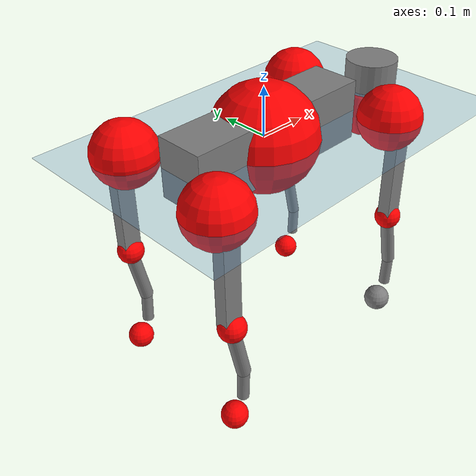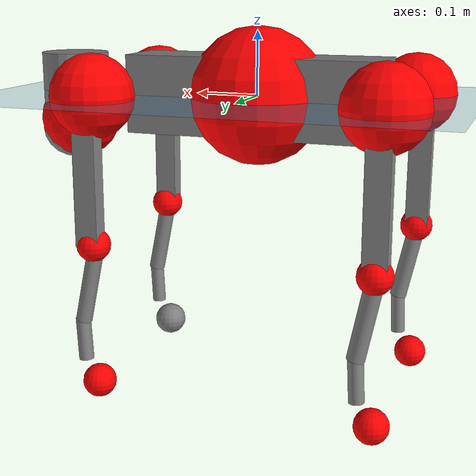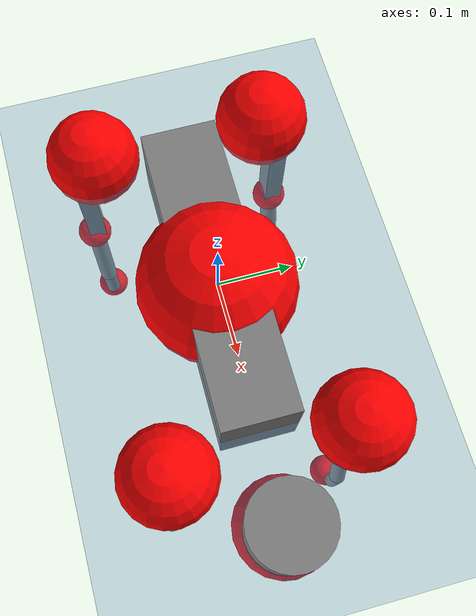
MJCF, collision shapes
<mujoco model="go2">
  <compiler angle="radian" assetdir="assets" balanceinertia="true" inertiafromgeom="false"/>

  <option timestep="0.005" density="1.2" viscosity="2e-05"/>

  <size nkey="1"/>

  <visual>
    <quality shadowsize="8192"/>
    <map shadowclip="0.5"/>
  </visual>

  <default>
    <default class="/">
      <geom contype="0" conaffinity="0" group="1" solref="-1000 -80"/>
      <site size="0.01 0.005 0.005" group="5"/>
      <general forcelimited="true" biastype="affine" gainprm="20" biasprm="0 -20 -0.5"/>
      <default class="go2">
        <joint armature="0.01" damping="0.01" frictionloss="0.2"/>
        <geom condim="1" margin="0.001"/>
        <default class="visual">
          <geom type="mesh" group="2"/>
        </default>
        <default class="collision">
          <geom group="3"/>
          <default class="foot">
            <geom size="0.022 0 0" condim="6" priority="1" friction="0.8 0.02 0.01" solimp="0.015 1 0.022"/>
          </default>
        </default>
        <default class="reward_collision_sphere">
          <geom group="5" rgba="1 0 0 1"/>
        </default>
      </default>
    </default>
  </default>

  <asset>
    <texture type="skybox" colorspace="auto" name="//unnamed_texture_0" builtin="gradient" rgb1="0.95 0.95 0.95" rgb2="0.95 0.95 0.95" width="100" height="600"/>
    <texture type="2d" colorspace="auto" name="texplane" builtin="checker" rgb1="0.345 0.575 0.748" rgb2="0.345 0.575 0.748" markrgb="1 1 1" width="512" height="512"/>
    <material name="MatPlane" class="/" texture="texplane" texuniform="true" texrepeat="2 2" specular="0.9"/>
    <material name="metal" class="/" rgba="0.9 0.95 0.95 1"/>
    <material name="black" class="/" rgba="0 0 0 1"/>
    <material name="white" class="/"/>
    <material name="gray" class="/" rgba="0.671705 0.692426 0.77427 1"/>
    <mesh name="base_0" class="/" file="base_0.obj"/>
    <mesh name="base_1" class="/" file="base_1.obj"/>
    <mesh name="base_2" class="/" file="base_2.obj"/>
    <mesh name="base_3" class="/" file="base_3.obj"/>
    <mesh name="base_4" class="/" file="base_4.obj"/>
    <mesh name="hip_0" class="/" file="hip_0.obj"/>
    <mesh name="hip_1" class="/" file="hip_1.obj"/>
    <mesh name="thigh_0" class="/" file="thigh_0.obj"/>
    <mesh name="thigh_1" class="/" file="thigh_1.obj"/>
    <mesh name="thigh_mirror_0" class="/" file="thigh_mirror_0.obj"/>
    <mesh name="thigh_mirror_1" class="/" file="thigh_mirror_1.obj"/>
    <mesh name="calf_0" class="/" file="calf_0.obj"/>
    <mesh name="calf_1" class="/" file="calf_1.obj"/>
    <mesh name="calf_mirror_0" class="/" file="calf_mirror_0.obj"/>
    <mesh name="calf_mirror_1" class="/" file="calf_mirror_1.obj"/>
    <mesh name="foot" class="/" file="foot.obj"/>
  </asset>

  <worldbody>
    <geom name="floor" class="/" size="100 100 0.125" type="plane" group="0" material="MatPlane"/>
    <light name="toplight_shadow" class="/" pos="0 0 5" dir="0.0990148 0.0990148 -0.990148" type="directional" ambient="0.04 0.04 0.04" diffuse="0.55 0.55 0.55" specular="0.12 0.12 0.12"/>
    <light name="toplight_fill" class="/" pos="0 0 5" dir="0.0990148 0.0990148 -0.990148" type="directional" castshadow="false" ambient="0.04 0.04 0.04" diffuse="0.3 0.3 0.3" specular="0.08 0.08 0.08"/>
    <body name="trunk" childclass="go2" pos="-0.00119052 -0.000567122 0.000251659" quat="1 0.000279844 -6.24742e-05 -0.000269993">
      <inertial pos="0.032621 0.00579244 -0.00528584" quat="-0.00314395 0.718313 2.50952e-06 0.695713" mass="8.11036" diaginertia="0.198954 0.118238 0.0373722"/>
      <joint name="//unnamed_joint_0" type="free" armature="0" damping="0" frictionloss="0"/>
      <geom name="//unnamed_geom_1" class="visual" material="black" mesh="base_0"/>
      <geom name="//unnamed_geom_2" class="visual" material="black" mesh="base_1"/>
      <geom name="//unnamed_geom_3" class="visual" material="black" mesh="base_2"/>
      <geom name="//unnamed_geom_4" class="visual" material="white" mesh="base_3"/>
      <geom name="//unnamed_geom_5" class="visual" material="gray" mesh="base_4"/>
      <geom name="trunk_1" class="collision" size="0.203254 0.0505164 0.0615922" type="box"/>
      <geom name="trunk_2" class="collision" size="0.0540283 0.0486254" pos="0.32131 0 0.0107856" type="cylinder"/>
      <geom name="trunk_3" class="collision" size="0.0507866" pos="0.330329 0 -0.0647135"/>
      <geom name="//unnamed_geom_9" class="reward_collision_sphere" size="0.108057"/>
      <geom name="//unnamed_geom_10" class="reward_collision_sphere" size="0.0648339" pos="0.315673 0 -0.0485351"/>
      <site name="imu" pos="-0.0635619 0.000293481 0.0801078" size="0.0108057"/>
      <camera name="track" pos="0 -2.07147 0" quat="0.707107 0.707107 0 0" mode="trackcom"/>
      <camera name="ego_camera" pos="0.35175 0 0.0485351" quat="-0.5 -0.5 0.5 0.5"/>
      <body name="FL_hip" pos="0.222504 0.0532005 0.00486055" quat="0.999999 -0.000330487 -0.00109979 -0.000121348">
        <inertial pos="-0.00638199 0.00627346 -0.0021387" quat="0.498522 0.499365 0.506484 0.495564" mass="0.932282" diaginertia="0.00180572 0.000837885 0.000771366"/>
        <joint name="FL_hip_joint" pos="0 0 0" axis="0.999964 -0.0047129 0.00708601" stiffness="0.0156855" range="-1.04801 1.03788" armature="0.0116693" damping="0" frictionloss="0.250396"/>
        <geom name="//unnamed_geom_11" class="visual" material="metal" mesh="hip_0"/>
        <geom name="//unnamed_geom_12" class="visual" material="gray" mesh="hip_1"/>
        <geom name="//unnamed_geom_13" class="collision" size="0.049706 0.0216113" pos="0 0.0828587 0" quat="0.707107 0.707107 0 0" type="cylinder"/>
        <geom name="//unnamed_geom_14" class="reward_collision_sphere" size="0.0648339" pos="0 0.0725014 0"/>
        <body name="FL_thigh" pos="0.00208352 0.0912377 -0.00189139" quat="0.999995 0.00158894 -0.00265709 0.000796842">
          <inertial pos="-0.00236762 -0.023048 -0.0370983" quat="0.818238 0.0930025 -0.0115664 0.56719" mass="1.47793" diaginertia="0.0106339 0.00747009 0.00126002"/>
          <joint name="FL_thigh_joint" pos="0 0 0" axis="0.00552036 0.999985 -0.000433457" range="-1.69001 3.42938" armature="0.0102284" damping="0" frictionloss="0.238289"/>
          <geom name="//unnamed_geom_15" class="visual" material="metal" mesh="thigh_0"/>
          <geom name="//unnamed_geom_16" class="visual" material="gray" mesh="thigh_1"/>
          <geom name="//unnamed_geom_17" class="collision" size="0.11508 0.0132369 0.0183696" pos="0 0 -0.114866" quat="0.707107 0 0.707107 0" type="box"/>
          <body name="FL_calf" pos="-0.00232959 -0.00625635 -0.229244" quat="1 0.00044601 0.000459732 0.000199861">
            <inertial pos="0.00663104 0.00111455 -0.151217" quat="0.707743 0.00228793 -0.00736847 0.706428" mass="0.297671" diaginertia="0.00282424 0.00174889 7.72807e-05"/>
            <joint name="FL_calf_joint" pos="0 0 0" axis="0.00344993 0.999981 0.00506302" stiffness="0.0281073" range="-2.78261 -0.82138" armature="0.0110085" damping="0.0142597" frictionloss="0.224892"/>
            <geom name="//unnamed_geom_18" class="visual" material="gray" mesh="calf_0"/>
            <geom name="//unnamed_geom_19" class="visual" material="black" mesh="calf_1"/>
            <geom name="FL_calf0" class="collision" size="0.0129668 0.0648339" pos="0.00901923 0 -0.0647135" quat="0.994493 0 -0.104807 0" type="cylinder"/>
            <geom name="//unnamed_geom_21" class="collision" size="0.0118862 0.0351184" pos="0.0225481 0 -0.159627" quat="0.999688 0 0.0249974 0" type="cylinder"/>
            <geom name="//unnamed_geom_22" class="visual" pos="0 0 -0.229733" quat="1 0 0 0" material="black" mesh="foot"/>
            <geom name="FL_foot" class="foot" size="0.0241723" pos="-0.00225481 0 -0.229733"/>
            <geom name="//unnamed_geom_24" class="reward_collision_sphere" size="0.0270141"/>
            <geom name="//unnamed_geom_25" class="reward_collision_sphere" size="0.0270141" pos="-0.00225481 0 -0.229733"/>
            <site name="FL_foot" class="foot" pos="-0.00225481 0 -0.229733" size="0.0108057"/>
          </body>
        </body>
      </body>
      <body name="FR_hip" pos="0.225264 -0.0498793 -0.000819211" quat="1 0.000221152 -0.000273259 0.000299007">
        <inertial pos="-0.00335748 0.00711968 0.00287473" quat="0.468553 0.497862 0.521761 0.510252" mass="0.853595" diaginertia="0.00174754 0.000665994 0.000755354"/>
        <joint name="FR_hip_joint" pos="0 0 0" axis="0.999682 -0.00840821 0.0237639" stiffness="0.00337397" range="-1.00704 1.05082" armature="0.010467" damping="0.0290458" frictionloss="0.216466"/>
        <geom name="//unnamed_geom_26" class="visual" pos="0 -3.73069e-10 -1.60017e-08" quat="4.63268e-05 1 0 0" material="metal" mesh="hip_0"/>
        <geom name="//unnamed_geom_27" class="visual" pos="0 -6.04789e-10 3.95783e-08" quat="4.63268e-05 1 0 0" material="gray" mesh="hip_1"/>
        <geom name="//unnamed_geom_28" class="collision" size="0.049706 0.0216113" pos="0 -0.0828587 0" quat="0.707107 0.707107 0 0" type="cylinder"/>
        <geom name="//unnamed_geom_29" class="reward_collision_sphere" size="0.0648339" pos="0 -0.0725014 0"/>
        <body name="FR_thigh" pos="-0.00187085 -0.0968082 0.00583929" quat="0.999996 0.00235844 -0.00124956 -0.000544725">
          <inertial pos="-0.0113858 0.0224826 -0.0331434" quat="0.559002 -0.0130066 0.0864012 0.82455" mass="1.33879" diaginertia="0.0109581 0.0072538 0.00114394"/>
          <joint name="FR_thigh_joint" pos="0 0 0" axis="-0.00536404 -0.999984 0.00185879" range="-3.48577 1.53423" armature="0.0122658" damping="0" frictionloss="0.210854"/>
          <geom name="//unnamed_geom_30" class="visual" material="metal" mesh="thigh_mirror_0"/>
          <geom name="//unnamed_geom_31" class="visual" material="gray" mesh="thigh_mirror_1"/>
          <geom name="//unnamed_geom_32" class="collision" size="0.11508 0.0132369 0.0183696" pos="0 0 -0.114866" quat="0.707107 0 0.707107 0" type="box"/>
          <body name="FR_calf" pos="0.00205571 0.00113017 -0.22816" quat="0.999999 -0.000557145 -2.45529e-05 0.000909206">
            <inertial pos="0.0115098 0.000900766 -0.153593" quat="0.690431 0.0288142 -0.00954843 0.722761" mass="0.278986" diaginertia="0.00254493 0.00166249 7.30127e-05"/>
            <joint name="FR_calf_joint" pos="0 0 0" axis="-0.00360027 -0.999763 -0.0214795" stiffness="0.0345819" range="0.982409 2.76953" armature="0.00799269" damping="0" frictionloss="0.207226"/>
            <geom name="//unnamed_geom_33" class="visual" material="gray" mesh="calf_mirror_0"/>
            <geom name="//unnamed_geom_34" class="visual" material="black" mesh="calf_mirror_1"/>
            <geom name="FR_calf0" class="collision" size="0.0140473 0.0648339" pos="0.011274 0 -0.0647135" quat="0.995004 0 -0.0998334 0" type="cylinder"/>
            <geom name="//unnamed_geom_36" class="collision" size="0.0118862 0.0351184" pos="0.0225481 0 -0.159627" quat="0.999688 0 0.0249974 0" type="cylinder"/>
            <geom name="//unnamed_geom_37" class="visual" pos="0 0 -0.229733" quat="1 0 0 0" material="black" mesh="foot"/>
            <geom name="FR_foot" class="foot" size="0.0279328" pos="-0.00225481 0 -0.229733"/>
            <geom name="//unnamed_geom_39" class="reward_collision_sphere" size="0.0270141"/>
            <geom name="//unnamed_geom_40" class="reward_collision_sphere" size="0.0270141" pos="-0.00225481 0 -0.229733"/>
            <site name="FR_foot" class="foot" pos="-0.00225481 0 -0.229733" size="0.0108057"/>
          </body>
        </body>
      </body>
      <body name="RL_hip" pos="-0.224064 0.0514266 0.00619293" quat="0.999999 -0.00054102 0.000928068 -0.000358551">
        <inertial pos="0.00690441 -0.00127332 0.00800779" quat="0.486431 0.511759 0.502074 0.499409" mass="0.779243" diaginertia="0.00129598 0.000632909 0.000650311"/>
        <joint name="RL_hip_joint" pos="0 0 0" axis="-0.999718 -0.0234717 -0.00372497" stiffness="0.00433681" range="-1.05806 1.05089" armature="0.00937629" damping="0.0413171" frictionloss="0.218948"/>
        <geom name="//unnamed_geom_41" class="visual" pos="-4.25529e-10 0 -8.34134e-08" quat="4.63268e-05 0 1 0" material="metal" mesh="hip_0"/>
        <geom name="//unnamed_geom_42" class="visual" pos="-6.89833e-10 0 -7.39758e-08" quat="4.63268e-05 0 1 0" material="gray" mesh="hip_1"/>
        <geom name="//unnamed_geom_43" class="collision" size="0.049706 0.0216113" pos="0 0.0828587 0" quat="0.707107 0.707107 0 0" type="cylinder"/>
        <geom name="//unnamed_geom_44" class="reward_collision_sphere" size="0.0648339" pos="0 0.0725014 0"/>
        <body name="RL_thigh" pos="8.61384e-05 0.0988992 -0.0014936" quat="1 -6.83628e-06 -1.03666e-06 2.55661e-05">
          <inertial pos="0.00461302 -0.0226987 -0.0276174" quat="0.828121 0.0842337 -0.0202793 0.553813" mass="1.5254" diaginertia="0.0124975 0.0069514 0.00134029"/>
          <joint name="RL_thigh_joint" pos="0 0 0" axis="-0.0265251 0.999648 -0.00080802" range="-0.494439 4.59982" armature="0.0117485" damping="0.0294633" frictionloss="0.223756"/>
          <geom name="//unnamed_geom_45" class="visual" material="metal" mesh="thigh_0"/>
          <geom name="//unnamed_geom_46" class="visual" material="gray" mesh="thigh_1"/>
          <geom name="//unnamed_geom_47" class="collision" size="0.11508 0.0132369 0.0183696" pos="0 0 -0.114866" quat="0.707107 0 0.707107 0" type="box"/>
          <body name="RL_calf" pos="0.000626988 -0.000966823 -0.2292" quat="1 0.00039794 0.000628955 -0.000125038">
            <inertial pos="0.00561067 -0.00671491 -0.153049" quat="0.707364 0.00844604 0.00617051 0.706772" mass="0.272556" diaginertia="0.00250732 0.00143668 6.9445e-05"/>
            <joint name="RL_calf_joint" pos="0 0 0" axis="0.0047748 0.99988 0.0147469" range="-2.83688 -0.767393" armature="0.00709804" damping="0" frictionloss="0.272222"/>
            <geom name="//unnamed_geom_48" class="visual" material="gray" mesh="calf_0"/>
            <geom name="//unnamed_geom_49" class="visual" material="black" mesh="calf_1"/>
            <geom name="RL_calf0" class="collision" size="0.0140473 0.0648339" pos="0.011274 0 -0.0647135" quat="0.995004 0 -0.0998334 0" type="cylinder"/>
            <geom name="//unnamed_geom_51" class="collision" size="0.0118862 0.0351184" pos="0.0225481 0 -0.159627" quat="0.999688 0 0.0249974 0" type="cylinder"/>
            <geom name="//unnamed_geom_52" class="visual" pos="0 0 -0.229733" quat="1 0 0 0" material="black" mesh="foot"/>
            <geom name="RL_foot" class="foot" size="0.0220132" pos="-0.00225481 0 -0.229733"/>
            <geom name="//unnamed_geom_54" class="reward_collision_sphere" size="0.0270141"/>
            <geom name="//unnamed_geom_55" class="reward_collision_sphere" size="0.0270141" pos="-0.00225481 0 -0.229733"/>
            <site name="RL_foot" class="foot" pos="-0.00225481 0 -0.229733" size="0.0108057"/>
          </body>
        </body>
      </body>
      <body name="RR_hip" pos="-0.226903 -0.0462431 -0.000504218" quat="0.999999 0.000220562 -0.000269553 -0.0012028">
        <inertial pos="0.00845336 -0.00374387 0.00736694" quat="0.502264 0.529221 0.46612 0.500388" mass="0.884811" diaginertia="0.00176698 0.000793507 0.000781676"/>
        <joint name="RR_hip_joint" pos="0 0 0" axis="-0.999429 -0.0337734 -0.000277922" stiffness="0.0077388" range="-0.922368 1.01543" armature="0.0109682" damping="0.0171817" frictionloss="0.211759"/>
        <geom name="//unnamed_geom_56" class="visual" pos="4.22355e-10 -3.73069e-10 -6.74117e-08" quat="2.14617e-09 4.63268e-05 4.63268e-05 -1" material="metal" mesh="hip_0"/>
        <geom name="//unnamed_geom_57" class="visual" pos="6.97682e-10 -6.04789e-10 -1.13554e-07" quat="2.14617e-09 4.63268e-05 4.63268e-05 -1" material="gray" mesh="hip_1"/>
        <geom name="//unnamed_geom_58" class="collision" size="0.049706 0.0216113" pos="0 -0.0828587 0" quat="0.707107 0.707107 0 0" type="cylinder"/>
        <geom name="//unnamed_geom_59" class="reward_collision_sphere" size="0.0648339" pos="0 -0.0725014 0"/>
        <body name="RR_thigh" pos="-0.00778843 -0.0994874 0.00630364" quat="0.999996 0.0011317 -0.00133083 -0.00217553">
          <inertial pos="-0.00308821 0.0208789 -0.0338601" quat="0.553395 -0.0198686 0.0868118 0.828144" mass="1.58163" diaginertia="0.0118054 0.00700992 0.00129118"/>
          <joint name="RR_thigh_joint" pos="0 0 0" axis="0.00497869 -0.999985 -0.00207206" range="-4.58477 0.50949" armature="0.00977344" damping="0.00133162" frictionloss="0.217122"/>
          <geom name="//unnamed_geom_60" class="visual" material="metal" mesh="thigh_mirror_0"/>
          <geom name="//unnamed_geom_61" class="visual" material="gray" mesh="thigh_mirror_1"/>
          <geom name="//unnamed_geom_62" class="collision" size="0.11508 0.0132369 0.0183696" pos="0 0 -0.114866" quat="0.707107 0 0.707107 0" type="box"/>
          <body name="RR_calf" pos="0.00150954 -0.00547224 -0.232241" quat="0.999994 0.00130456 -0.00288099 0.0015179">
            <inertial pos="0.00210643 0.00148961 -0.151525" quat="0.694993 0.000991497 -0.016148 0.718835" mass="0.293882" diaginertia="0.00271395 0.00174095 7.81672e-05"/>
            <joint name="RR_calf_joint" pos="0 0 0" axis="0.00750368 -0.999972 0.000219912" stiffness="0.00533841" range="0.824234 2.59369" armature="0.0105281" damping="0" frictionloss="0.207911"/>
            <geom name="//unnamed_geom_63" class="visual" material="gray" mesh="calf_mirror_0"/>
            <geom name="//unnamed_geom_64" class="visual" material="black" mesh="calf_mirror_1"/>
            <geom name="RR_calf0" class="collision" size="0.0140473 0.0648339" pos="0.011274 0 -0.0647135" quat="0.995004 0 -0.0998334 0" type="cylinder"/>
            <geom name="//unnamed_geom_66" class="collision" size="0.0118862 0.0351184" pos="0.0225481 0 -0.159627" quat="0.999688 0 0.0249974 0" type="cylinder"/>
            <geom name="//unnamed_geom_67" class="visual" pos="0 0 -0.229733" quat="1 0 0 0" material="black" mesh="foot"/>
            <geom name="RR_foot" class="foot" size="0.0269778" pos="-0.00225481 0 -0.229733"/>
            <geom name="//unnamed_geom_69" class="reward_collision_sphere" size="0.0270141"/>
            <geom name="//unnamed_geom_70" class="reward_collision_sphere" size="0.0270141" pos="-0.00225481 0 -0.229733"/>
            <site name="RR_foot" class="foot" pos="-0.00225481 0 -0.229733" size="0.0108057"/>
          </body>
        </body>
      </body>
    </body>
  </worldbody>

  <contact>
    <pair class="/" geom1="floor" geom2="FL_foot" name="//unnamed_contact_0"/>
    <pair class="/" geom1="floor" geom2="FR_foot" name="//unnamed_contact_1"/>
    <pair class="/" geom1="floor" geom2="RL_foot" name="//unnamed_contact_2"/>
    <pair class="/" geom1="floor" geom2="RR_foot" name="//unnamed_contact_3"/>
  </contact>

  <actuator>
    <general name="FL_hip" class="/" joint="FL_hip_joint" forcerange="-29.9546 29.9546" gainprm="22.7459" biasprm="0 -22.7459 -0.567222"/>
    <general name="FL_thigh" class="/" joint="FL_thigh_joint" forcerange="-32.802 32.802" gainprm="22.7459" biasprm="0 -22.7459 -0.567222"/>
    <general name="FL_calf" class="/" joint="FL_calf_joint" forcerange="-48.4416 48.4416" gainprm="22.7459" biasprm="0 -22.7459 -0.567222"/>
    <general name="FR_hip" class="/" joint="FR_hip_joint" forcerange="-26.8062 26.8062" gainprm="22.7459" biasprm="0 -22.7459 -0.567222"/>
    <general name="FR_thigh" class="/" joint="FR_thigh_joint" forcerange="-22.1332 22.1332" gainprm="22.7459" biasprm="0 -22.7459 -0.567222"/>
    <general name="FR_calf" class="/" joint="FR_calf_joint" forcerange="-45.7679 45.7679" gainprm="22.7459" biasprm="0 -22.7459 -0.567222"/>
    <general name="RL_hip" class="/" joint="RL_hip_joint" forcerange="-25.609 25.609" gainprm="22.7459" biasprm="0 -22.7459 -0.567222"/>
    <general name="RL_thigh" class="/" joint="RL_thigh_joint" forcerange="-29.4568 29.4568" gainprm="22.7459" biasprm="0 -22.7459 -0.567222"/>
    <general name="RL_calf" class="/" joint="RL_calf_joint" forcerange="-49.2574 49.2574" gainprm="22.7459" biasprm="0 -22.7459 -0.567222"/>
    <general name="RR_hip" class="/" joint="RR_hip_joint" forcerange="-23.6536 23.6536" gainprm="22.7459" biasprm="0 -22.7459 -0.567222"/>
    <general name="RR_thigh" class="/" joint="RR_thigh_joint" forcerange="-20.1109 20.1109" gainprm="22.7459" biasprm="0 -22.7459 -0.567222"/>
    <general name="RR_calf" class="/" joint="RR_calf_joint" forcerange="-52.183 52.183" gainprm="22.7459" biasprm="0 -22.7459 -0.567222"/>
  </actuator>

  <sensor>
    <gyro site="imu" name="imu_angular_velocity"/>
    <velocimeter site="imu" name="imu_linear_velocity"/>
    <framelinvel objtype="site" objname="FL_foot" name="FL_foot_global_linear_velocity"/>
    <framelinvel objtype="site" objname="FR_foot" name="FR_foot_global_linear_velocity"/>
    <framelinvel objtype="site" objname="RL_foot" name="RL_foot_global_linear_velocity"/>
    <framelinvel objtype="site" objname="RR_foot" name="RR_foot_global_linear_velocity"/>
  </sensor>

  <keyframe>
    <key name="home" qpos="0 0 0.325 1 0 0 0 0.1 0.8 -1.5 -0.1 -0.8 1.5 -0.1 0.8 -1.5 0.1 -0.8 1.5"/>
  </keyframe>
</mujoco>
